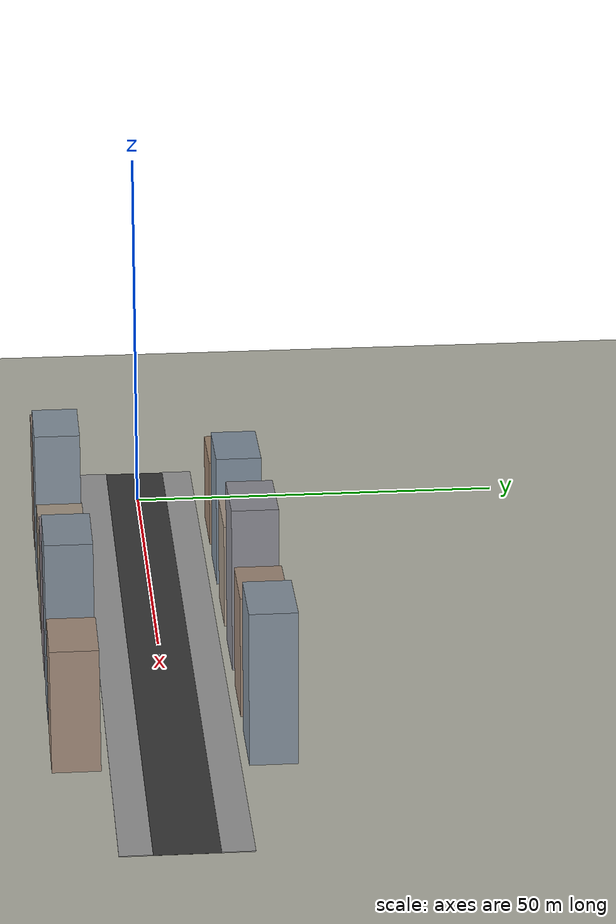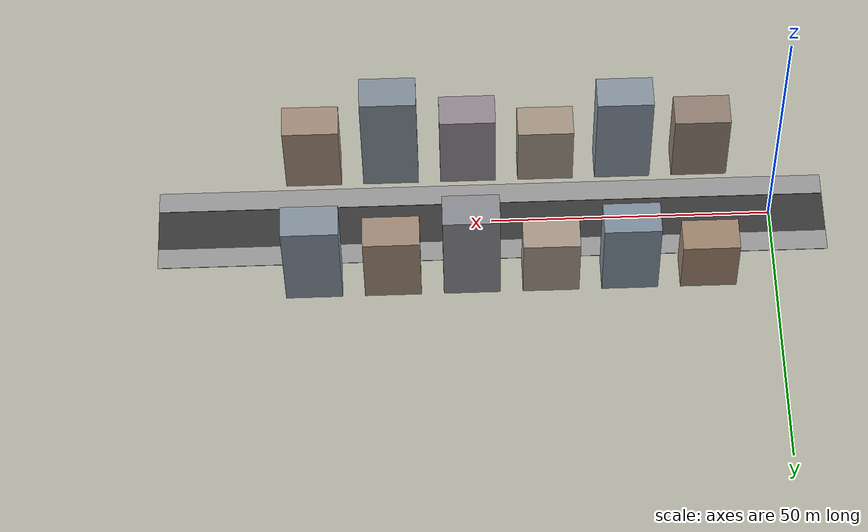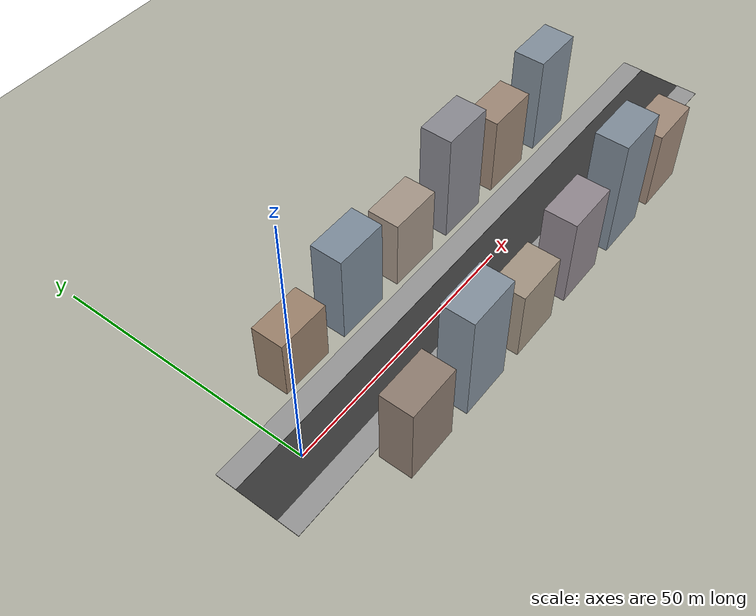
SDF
<sdf version="1.9">
 <world name="vp_city">
  <spherical_coordinates>
   <surface_model>EARTH_WGS84</surface_model>
   <world_frame_orientation>ENU</world_frame_orientation>
   <latitude_deg>37.7749</latitude_deg>
   <longitude_deg>-122.4194</longitude_deg>
   <elevation>0</elevation>
   <heading_deg>0</heading_deg>
  </spherical_coordinates>
  <physics name="1ms" type="ignored">
   <max_step_size>0.001</max_step_size>
   <real_time_factor>1.0</real_time_factor>
  </physics>
  <plugin filename="gz-sim-physics-system" name="gz::sim::systems::Physics"/>
  <plugin filename="gz-sim-sensors-system" name="gz::sim::systems::Sensors">
   <render_engine>ogre2</render_engine>
  </plugin>
  <plugin filename="gz-sim-scene-broadcaster-system" name="gz::sim::systems::SceneBroadcaster"/>
  <plugin filename="gz-sim-user-commands-system" name="gz::sim::systems::UserCommands"/>
  <scene>
   <ambient>0.5 0.5 0.52 1</ambient>
   <background>0.7 0.8 0.9 1</background>
   <shadows>true</shadows>
   <sky>
    <clouds>
     <speed>0.3</speed>
     <direction>0.5</direction>
     <humidity>0.4</humidity>
     <mean_size>0.5</mean_size>
    </clouds>
   </sky>
   <fog>
    <color>0.75 0.82 0.88 1</color>
    <type>linear</type>
    <start>60</start>
    <end>260</end>
    <density>1.0</density>
   </fog>
  </scene>
  <light type="directional" name="sun">
   <pose>0 0 10 0 0 0</pose>
   <diffuse>1.0 0.95 0.85 1</diffuse>
   <specular>0.25 0.22 0.2 1</specular>
   <direction>-0.4 0.25 -0.8</direction>
  </light>
  <light type="directional" name="sky_fill">
   <cast_shadows>false</cast_shadows>
   <pose>0 0 10 0 0 0</pose>
   <diffuse>0.35 0.4 0.5 1</diffuse>
   <specular>0 0 0 1</specular>
   <direction>0.6 -0.3 -0.5</direction>
  </light>
  <model name="city_terrain">
   <static>true</static>
   <link name="link">
    <collision name="collision">
     <geometry><plane><normal>0 0 1</normal><size>300 300</size></plane></geometry>
    </collision>
    <visual name="visual">
     <geometry><plane><normal>0 0 1</normal><size>300 300</size></plane></geometry>
     <material>
      <ambient>0.5 0.5 0.45 1</ambient>
      <diffuse>0.7 0.7 0.65 1</diffuse>
      <pbr>
       <metal><albedo_map>city_terrain.jpg</albedo_map><roughness>1.0</roughness><metalness>0.0</metalness></metal>
      </pbr>
     </material>
    </visual>
   </link>
  </model>
  <model name="main_road">
   <static>true</static>
   <pose>50 0 0.01 0 0 0</pose>
   <link name="link">
    <visual name="visual">
     <geometry><box><size>120 8 0.02</size></box></geometry>
     <material><ambient>0.18 0.18 0.18 1</ambient><diffuse>0.22 0.22 0.22 1</diffuse></material>
    </visual>
    <collision name="collision"><geometry><box><size>120 8 0.02</size></box></geometry></collision>
   </link>
  </model>
  <model name="lane_markings">
   <static>true</static>
   <link name="link">
    <visual name="m0">
     <pose>5 0 0.03 0 0 0</pose>
     <geometry><box><size>2 0.15 0.005</size></box></geometry>
     <material><ambient>0.9 0.9 0.9 1</ambient><diffuse>0.95 0.95 0.95 1</diffuse></material>
    </visual>
    <visual name="m1">
     <pose>12 0 0.03 0 0 0</pose>
     <geometry><box><size>2 0.15 0.005</size></box></geometry>
     <material><ambient>0.9 0.9 0.9 1</ambient><diffuse>0.95 0.95 0.95 1</diffuse></material>
    </visual>
    <visual name="m2">
     <pose>19 0 0.03 0 0 0</pose>
     <geometry><box><size>2 0.15 0.005</size></box></geometry>
     <material><ambient>0.9 0.9 0.9 1</ambient><diffuse>0.95 0.95 0.95 1</diffuse></material>
    </visual>
    <visual name="m3">
     <pose>26 0 0.03 0 0 0</pose>
     <geometry><box><size>2 0.15 0.005</size></box></geometry>
     <material><ambient>0.9 0.9 0.9 1</ambient><diffuse>0.95 0.95 0.95 1</diffuse></material>
    </visual>
    <visual name="m4">
     <pose>33 0 0.03 0 0 0</pose>
     <geometry><box><size>2 0.15 0.005</size></box></geometry>
     <material><ambient>0.9 0.9 0.9 1</ambient><diffuse>0.95 0.95 0.95 1</diffuse></material>
    </visual>
    <visual name="m5">
     <pose>40 0 0.03 0 0 0</pose>
     <geometry><box><size>2 0.15 0.005</size></box></geometry>
     <material><ambient>0.9 0.9 0.9 1</ambient><diffuse>0.95 0.95 0.95 1</diffuse></material>
    </visual>
    <visual name="m6">
     <pose>47 0 0.03 0 0 0</pose>
     <geometry><box><size>2 0.15 0.005</size></box></geometry>
     <material><ambient>0.9 0.9 0.9 1</ambient><diffuse>0.95 0.95 0.95 1</diffuse></material>
    </visual>
    <visual name="m7">
     <pose>54 0 0.03 0 0 0</pose>
     <geometry><box><size>2 0.15 0.005</size></box></geometry>
     <material><ambient>0.9 0.9 0.9 1</ambient><diffuse>0.95 0.95 0.95 1</diffuse></material>
    </visual>
   </link>
  </model>
  <model name="sidewalk_left">
   <static>true</static>
   <pose>50 6 0.05 0 0 0</pose>
   <link name="link">
    <visual name="visual">
     <geometry><box><size>120 4 0.1</size></box></geometry>
     <material><ambient>0.55 0.55 0.55 1</ambient><diffuse>0.6 0.6 0.6 1</diffuse></material>
    </visual>
    <collision name="collision"><geometry><box><size>120 4 0.1</size></box></geometry></collision>
   </link>
  </model>
  <model name="sidewalk_right">
   <static>true</static>
   <pose>50 -6 0.05 0 0 0</pose>
   <link name="link">
    <visual name="visual">
     <geometry><box><size>120 4 0.1</size></box></geometry>
     <material><ambient>0.55 0.55 0.55 1</ambient><diffuse>0.6 0.6 0.6 1</diffuse></material>
    </visual>
    <collision name="collision"><geometry><box><size>120 4 0.1</size></box></geometry></collision>
   </link>
  </model>
  <model name="bldg_l0">
   <static>true</static>
   <pose>12 12 6 0 0 0</pose>
   <link name="link">
    <visual name="v">
     <geometry><box><size>10 6 12</size></box></geometry>
     <material><ambient>0.50 0.42 0.35 1</ambient><diffuse>0.62 0.52 0.43 1</diffuse></material>
    </visual>
    <collision name="c"><geometry><box><size>10 6 12</size></box></geometry></collision>
   </link>
  </model>
  <model name="bldg_l1">
   <static>true</static>
   <pose>26 12 9 0 0 0</pose>
   <link name="link">
    <visual name="v">
     <geometry><box><size>10 6 18</size></box></geometry>
     <material><ambient>0.40 0.45 0.50 1</ambient><diffuse>0.50 0.56 0.62 1</diffuse></material>
    </visual>
    <collision name="c"><geometry><box><size>10 6 18</size></box></geometry></collision>
   </link>
  </model>
  <model name="bldg_l2">
   <static>true</static>
   <pose>40 12 7 0 0 0</pose>
   <link name="link">
    <visual name="v">
     <geometry><box><size>10 6 14</size></box></geometry>
     <material><ambient>0.55 0.50 0.45 1</ambient><diffuse>0.66 0.60 0.54 1</diffuse></material>
    </visual>
    <collision name="c"><geometry><box><size>10 6 14</size></box></geometry></collision>
   </link>
  </model>
  <model name="bldg_l3">
   <static>true</static>
   <pose>54 12 11 0 0 0</pose>
   <link name="link">
    <visual name="v">
     <geometry><box><size>10 6 22</size></box></geometry>
     <material><ambient>0.45 0.45 0.48 1</ambient><diffuse>0.55 0.55 0.58 1</diffuse></material>
    </visual>
    <collision name="c"><geometry><box><size>10 6 22</size></box></geometry></collision>
   </link>
  </model>
  <model name="bldg_l4">
   <static>true</static>
   <pose>68 12 8 0 0 0</pose>
   <link name="link">
    <visual name="v">
     <geometry><box><size>10 6 16</size></box></geometry>
     <material><ambient>0.52 0.44 0.38 1</ambient><diffuse>0.63 0.54 0.47 1</diffuse></material>
    </visual>
    <collision name="c"><geometry><box><size>10 6 16</size></box></geometry></collision>
   </link>
  </model>
  <model name="bldg_l5">
   <static>true</static>
   <pose>82 12 10 0 0 0</pose>
   <link name="link">
    <visual name="v">
     <geometry><box><size>10 6 20</size></box></geometry>
     <material><ambient>0.42 0.46 0.50 1</ambient><diffuse>0.52 0.57 0.62 1</diffuse></material>
    </visual>
    <collision name="c"><geometry><box><size>10 6 20</size></box></geometry></collision>
   </link>
  </model>
  <model name="bldg_r0">
   <static>true</static>
   <pose>12 -12 8 0 0 0</pose>
   <link name="link">
    <visual name="v">
     <geometry><box><size>10 6 16</size></box></geometry>
     <material><ambient>0.46 0.40 0.36 1</ambient><diffuse>0.57 0.50 0.45 1</diffuse></material>
    </visual>
    <collision name="c"><geometry><box><size>10 6 16</size></box></geometry></collision>
   </link>
  </model>
  <model name="bldg_r1">
   <static>true</static>
   <pose>26 -12 11 0 0 0</pose>
   <link name="link">
    <visual name="v">
     <geometry><box><size>10 6 22</size></box></geometry>
     <material><ambient>0.43 0.47 0.51 1</ambient><diffuse>0.53 0.58 0.63 1</diffuse></material>
    </visual>
    <collision name="c"><geometry><box><size>10 6 22</size></box></geometry></collision>
   </link>
  </model>
  <model name="bldg_r2">
   <static>true</static>
   <pose>40 -12 7 0 0 0</pose>
   <link name="link">
    <visual name="v">
     <geometry><box><size>10 6 14</size></box></geometry>
     <material><ambient>0.54 0.49 0.43 1</ambient><diffuse>0.65 0.59 0.52 1</diffuse></material>
    </visual>
    <collision name="c"><geometry><box><size>10 6 14</size></box></geometry></collision>
   </link>
  </model>
  <model name="bldg_r3">
   <static>true</static>
   <pose>54 -12 9 0 0 0</pose>
   <link name="link">
    <visual name="v">
     <geometry><box><size>10 6 18</size></box></geometry>
     <material><ambient>0.48 0.44 0.47 1</ambient><diffuse>0.58 0.54 0.57 1</diffuse></material>
    </visual>
    <collision name="c"><geometry><box><size>10 6 18</size></box></geometry></collision>
   </link>
  </model>
  <model name="bldg_r4">
   <static>true</static>
   <pose>68 -12 12 0 0 0</pose>
   <link name="link">
    <visual name="v">
     <geometry><box><size>10 6 24</size></box></geometry>
     <material><ambient>0.41 0.45 0.49 1</ambient><diffuse>0.51 0.56 0.61 1</diffuse></material>
    </visual>
    <collision name="c"><geometry><box><size>10 6 24</size></box></geometry></collision>
   </link>
  </model>
  <model name="bldg_r5">
   <static>true</static>
   <pose>82 -12 8 0 0 0</pose>
   <link name="link">
    <visual name="v">
     <geometry><box><size>10 6 16</size></box></geometry>
     <material><ambient>0.53 0.45 0.39 1</ambient><diffuse>0.64 0.55 0.48 1</diffuse></material>
    </visual>
    <collision name="c"><geometry><box><size>10 6 16</size></box></geometry></collision>
   </link>
  </model>
 </world>
</sdf>
